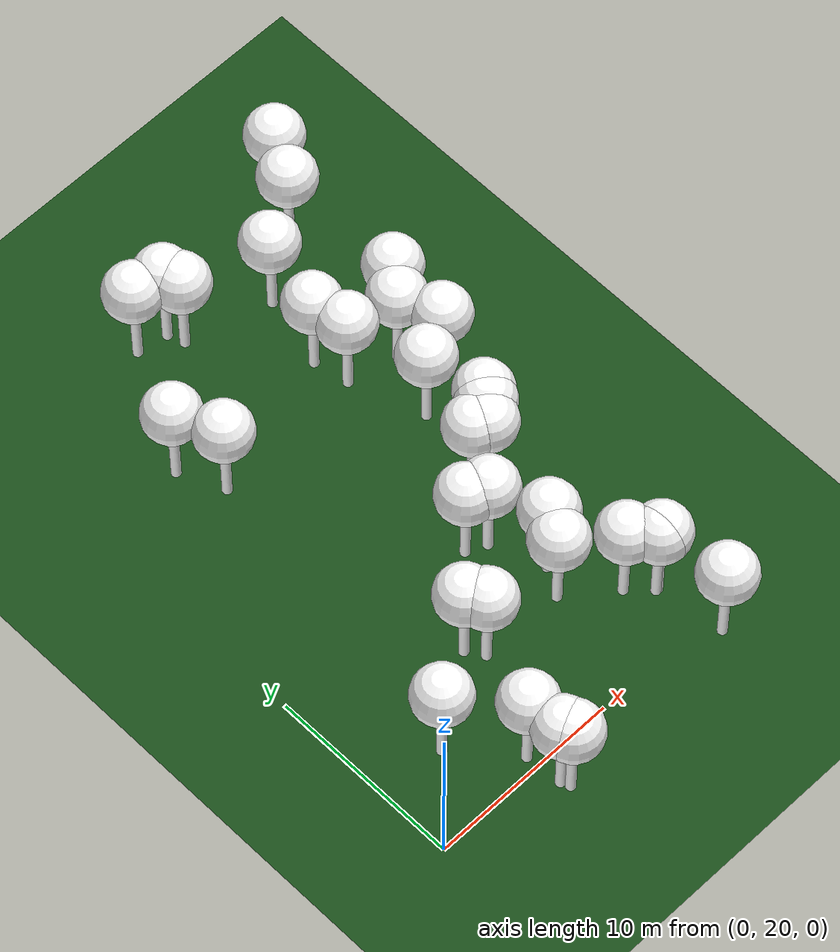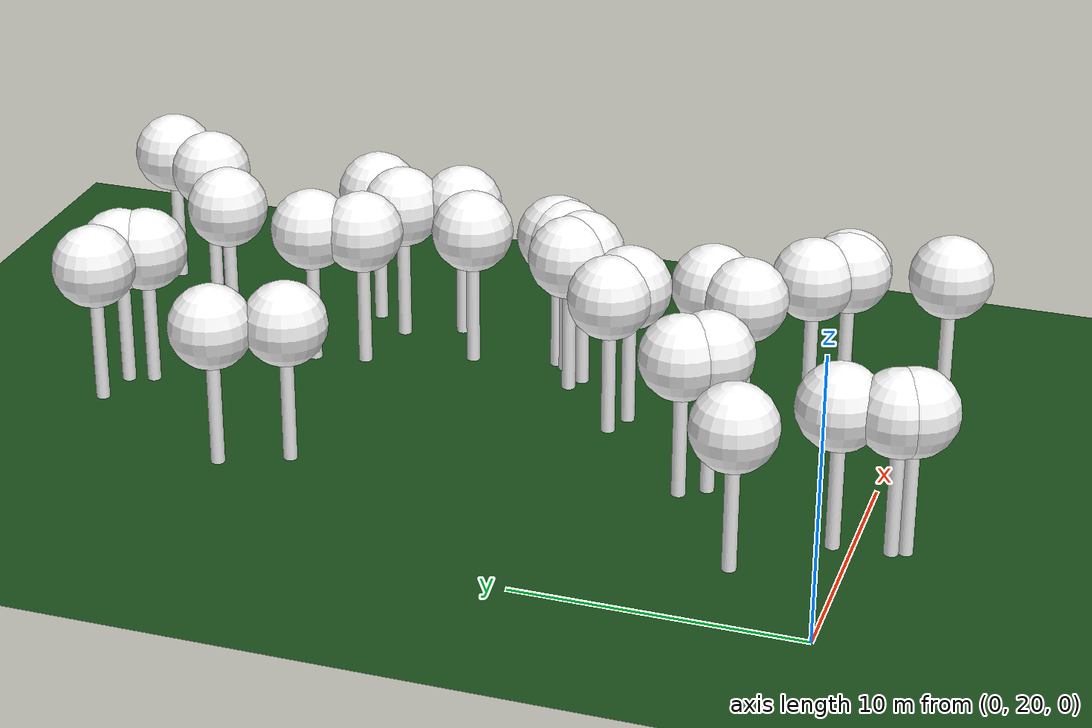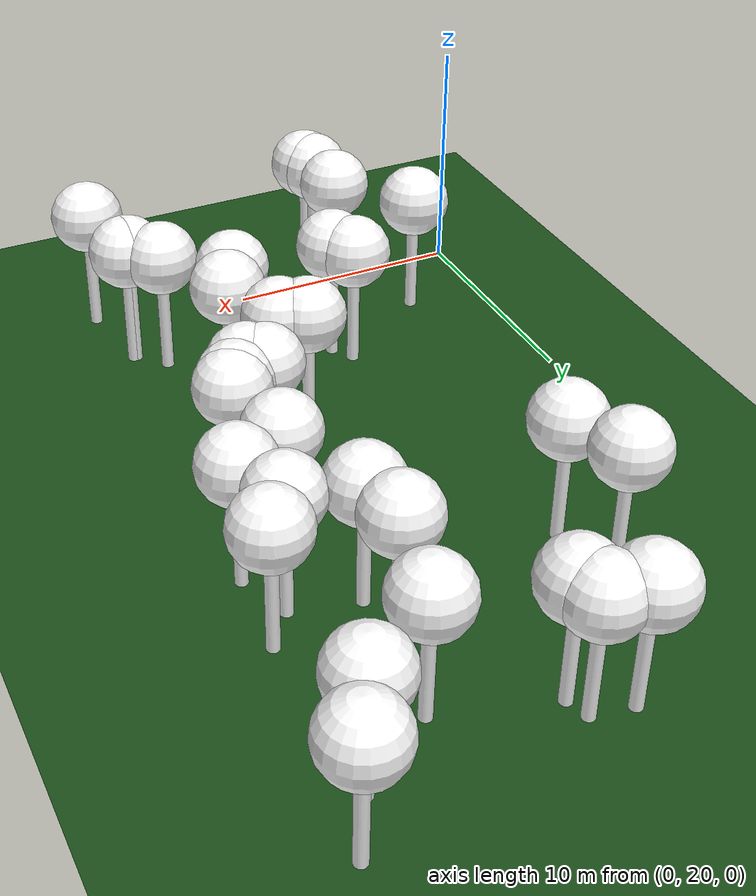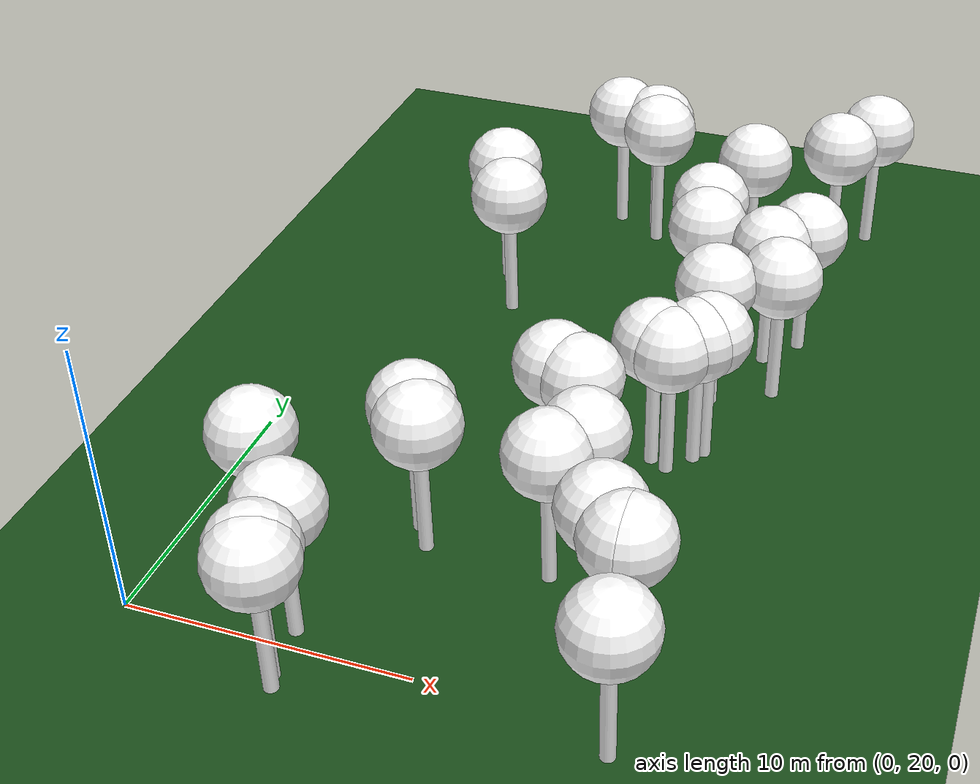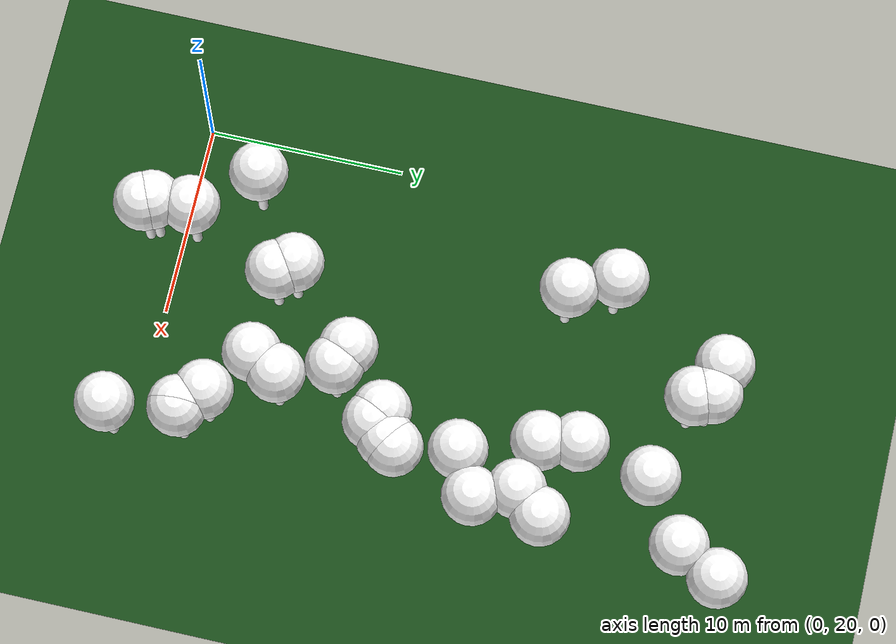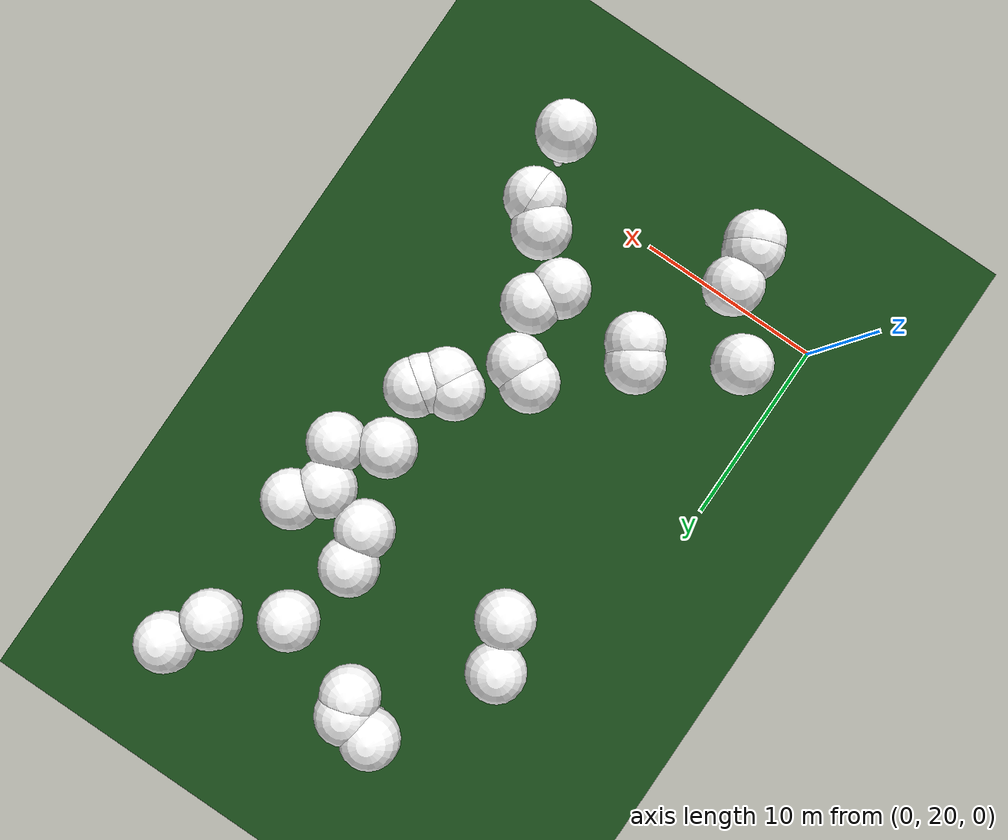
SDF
<sdf version="1.8">
 <world name="forest_world">
  <model name="tree_simple497">
   <static>1</static>
   <link name="link">
    <pose>0 0 0.1 0 -0 0</pose>
    <collision name="collision_trunk">
     <pose>0 0 2 0 -0 0</pose>
     <geometry><cylinder><radius>0.25</radius><length>4</length></cylinder></geometry>
    </collision>
    <collision name="collision_treetop">
     <pose>0 0 5.2 0 -0 0</pose>
     <geometry><sphere><radius>1.5</radius></sphere></geometry>
    </collision>
    <visual name="trunk">
     <pose>0 0 2 0 -0 0</pose>
     <geometry><cylinder><radius>0.25</radius><length>4</length></cylinder></geometry>
     <material>
      <ambient>0.5 0.5 0.5 1</ambient>
      <diffuse>1.0 1.0 1.0 1</diffuse>
      <specular>0.0 0.0 0.0 1</specular>
      <pbr>
       <metal>
        <albedo_map>../worlds/textures/tree_simple_trunk.jpg</albedo_map>
        <metalness>0.0</metalness>
        <roughness>0.8</roughness>
       </metal>
      </pbr>
     </material>
    </visual>
    <visual name="treetop">
     <pose>0 0 5.2 0 -0 0</pose>
     <geometry><sphere><radius>1.5</radius></sphere></geometry>
     <material>
      <ambient>0.5 0.5 0.5 1</ambient>
      <diffuse>1.0 1.0 1.0 1</diffuse>
      <specular>0.0 0.0 0.0 1</specular>
      <pbr>
       <metal>
        <albedo_map>../worlds/textures/tree_simple_treetop.jpg</albedo_map>
        <metalness>0.0</metalness>
        <roughness>0.9</roughness>
       </metal>
      </pbr>
     </material>
    </visual>
   </link>
   <pose>16.5730666381 19.0016793819 0 0 -0 0</pose>
  </model>
  <model name="tree_simple465">
   <static>1</static>
   <link name="link">
    <pose>0 0 0.1 0 -0 0</pose>
    <collision name="collision_trunk">
     <pose>0 0 2 0 -0 0</pose>
     <geometry><cylinder><radius>0.25</radius><length>4</length></cylinder></geometry>
    </collision>
    <collision name="collision_treetop">
     <pose>0 0 5.2 0 -0 0</pose>
     <geometry><sphere><radius>1.5</radius></sphere></geometry>
    </collision>
    <visual name="trunk">
     <pose>0 0 2 0 -0 0</pose>
     <geometry><cylinder><radius>0.25</radius><length>4</length></cylinder></geometry>
     <material>
      <ambient>0.5 0.5 0.5 1</ambient>
      <diffuse>1.0 1.0 1.0 1</diffuse>
      <specular>0.0 0.0 0.0 1</specular>
      <pbr>
       <metal>
        <albedo_map>../worlds/textures/tree_simple_trunk.jpg</albedo_map>
        <metalness>0.0</metalness>
        <roughness>0.8</roughness>
       </metal>
      </pbr>
     </material>
    </visual>
    <visual name="treetop">
     <pose>0 0 5.2 0 -0 0</pose>
     <geometry><sphere><radius>1.5</radius></sphere></geometry>
     <material>
      <ambient>0.5 0.5 0.5 1</ambient>
      <diffuse>1.0 1.0 1.0 1</diffuse>
      <specular>0.0 0.0 0.0 1</specular>
      <pbr>
       <metal>
        <albedo_map>../worlds/textures/tree_simple_treetop.jpg</albedo_map>
        <metalness>0.0</metalness>
        <roughness>0.9</roughness>
       </metal>
      </pbr>
     </material>
    </visual>
   </link>
   <pose>5.78708546562 20.6382949275 0 0 -0 0</pose>
  </model>
  <model name="tree_simple457">
   <static>1</static>
   <link name="link">
    <pose>0 0 0.1 0 -0 0</pose>
    <collision name="collision_trunk">
     <pose>0 0 2 0 -0 0</pose>
     <geometry><cylinder><radius>0.25</radius><length>4</length></cylinder></geometry>
    </collision>
    <collision name="collision_treetop">
     <pose>0 0 5.2 0 -0 0</pose>
     <geometry><sphere><radius>1.5</radius></sphere></geometry>
    </collision>
    <visual name="trunk">
     <pose>0 0 2 0 -0 0</pose>
     <geometry><cylinder><radius>0.25</radius><length>4</length></cylinder></geometry>
     <material>
      <ambient>0.5 0.5 0.5 1</ambient>
      <diffuse>1.0 1.0 1.0 1</diffuse>
      <specular>0.0 0.0 0.0 1</specular>
      <pbr>
       <metal>
        <albedo_map>../worlds/textures/tree_simple_trunk.jpg</albedo_map>
        <metalness>0.0</metalness>
        <roughness>0.8</roughness>
       </metal>
      </pbr>
     </material>
    </visual>
    <visual name="treetop">
     <pose>0 0 5.2 0 -0 0</pose>
     <geometry><sphere><radius>1.5</radius></sphere></geometry>
     <material>
      <ambient>0.5 0.5 0.5 1</ambient>
      <diffuse>1.0 1.0 1.0 1</diffuse>
      <specular>0.0 0.0 0.0 1</specular>
      <pbr>
       <metal>
        <albedo_map>../worlds/textures/tree_simple_treetop.jpg</albedo_map>
        <metalness>0.0</metalness>
        <roughness>0.9</roughness>
       </metal>
      </pbr>
     </material>
    </visual>
   </link>
   <pose>13.2865883098 26.7984826025 0 0 -0 0</pose>
  </model>
  <model name="tree_simple450">
   <static>1</static>
   <link name="link">
    <pose>0 0 0.1 0 -0 0</pose>
    <collision name="collision_trunk">
     <pose>0 0 2 0 -0 0</pose>
     <geometry><cylinder><radius>0.25</radius><length>4</length></cylinder></geometry>
    </collision>
    <collision name="collision_treetop">
     <pose>0 0 5.2 0 -0 0</pose>
     <geometry><sphere><radius>1.5</radius></sphere></geometry>
    </collision>
    <visual name="trunk">
     <pose>0 0 2 0 -0 0</pose>
     <geometry><cylinder><radius>0.25</radius><length>4</length></cylinder></geometry>
     <material>
      <ambient>0.5 0.5 0.5 1</ambient>
      <diffuse>1.0 1.0 1.0 1</diffuse>
      <specular>0.0 0.0 0.0 1</specular>
      <pbr>
       <metal>
        <albedo_map>../worlds/textures/tree_simple_trunk.jpg</albedo_map>
        <metalness>0.0</metalness>
        <roughness>0.8</roughness>
       </metal>
      </pbr>
     </material>
    </visual>
    <visual name="treetop">
     <pose>0 0 5.2 0 -0 0</pose>
     <geometry><sphere><radius>1.5</radius></sphere></geometry>
     <material>
      <ambient>0.5 0.5 0.5 1</ambient>
      <diffuse>1.0 1.0 1.0 1</diffuse>
      <specular>0.0 0.0 0.0 1</specular>
      <pbr>
       <metal>
        <albedo_map>../worlds/textures/tree_simple_treetop.jpg</albedo_map>
        <metalness>0.0</metalness>
        <roughness>0.9</roughness>
       </metal>
      </pbr>
     </material>
    </visual>
   </link>
   <pose>16.0273432372 22.5148519884 0 0 -0 0</pose>
  </model>
  <model name="tree_simple445">
   <static>1</static>
   <link name="link">
    <pose>0 0 0.1 0 -0 0</pose>
    <collision name="collision_trunk">
     <pose>0 0 2 0 -0 0</pose>
     <geometry><cylinder><radius>0.25</radius><length>4</length></cylinder></geometry>
    </collision>
    <collision name="collision_treetop">
     <pose>0 0 5.2 0 -0 0</pose>
     <geometry><sphere><radius>1.5</radius></sphere></geometry>
    </collision>
    <visual name="trunk">
     <pose>0 0 2 0 -0 0</pose>
     <geometry><cylinder><radius>0.25</radius><length>4</length></cylinder></geometry>
     <material>
      <ambient>0.5 0.5 0.5 1</ambient>
      <diffuse>1.0 1.0 1.0 1</diffuse>
      <specular>0.0 0.0 0.0 1</specular>
      <pbr>
       <metal>
        <albedo_map>../worlds/textures/tree_simple_trunk.jpg</albedo_map>
        <metalness>0.0</metalness>
        <roughness>0.8</roughness>
       </metal>
      </pbr>
     </material>
    </visual>
    <visual name="treetop">
     <pose>0 0 5.2 0 -0 0</pose>
     <geometry><sphere><radius>1.5</radius></sphere></geometry>
     <material>
      <ambient>0.5 0.5 0.5 1</ambient>
      <diffuse>1.0 1.0 1.0 1</diffuse>
      <specular>0.0 0.0 0.0 1</specular>
      <pbr>
       <metal>
        <albedo_map>../worlds/textures/tree_simple_treetop.jpg</albedo_map>
        <metalness>0.0</metalness>
        <roughness>0.9</roughness>
       </metal>
      </pbr>
     </material>
    </visual>
   </link>
   <pose>17.3330924595 47.7477611906 0 0 -0 0</pose>
  </model>
  <model name="tree_simple419">
   <static>1</static>
   <link name="link">
    <pose>0 0 0.1 0 -0 0</pose>
    <collision name="collision_trunk">
     <pose>0 0 2 0 -0 0</pose>
     <geometry><cylinder><radius>0.25</radius><length>4</length></cylinder></geometry>
    </collision>
    <collision name="collision_treetop">
     <pose>0 0 5.2 0 -0 0</pose>
     <geometry><sphere><radius>1.5</radius></sphere></geometry>
    </collision>
    <visual name="trunk">
     <pose>0 0 2 0 -0 0</pose>
     <geometry><cylinder><radius>0.25</radius><length>4</length></cylinder></geometry>
     <material>
      <ambient>0.5 0.5 0.5 1</ambient>
      <diffuse>1.0 1.0 1.0 1</diffuse>
      <specular>0.0 0.0 0.0 1</specular>
      <pbr>
       <metal>
        <albedo_map>../worlds/textures/tree_simple_trunk.jpg</albedo_map>
        <metalness>0.0</metalness>
        <roughness>0.8</roughness>
       </metal>
      </pbr>
     </material>
    </visual>
    <visual name="treetop">
     <pose>0 0 5.2 0 -0 0</pose>
     <geometry><sphere><radius>1.5</radius></sphere></geometry>
     <material>
      <ambient>0.5 0.5 0.5 1</ambient>
      <diffuse>1.0 1.0 1.0 1</diffuse>
      <specular>0.0 0.0 0.0 1</specular>
      <pbr>
       <metal>
        <albedo_map>../worlds/textures/tree_simple_treetop.jpg</albedo_map>
        <metalness>0.0</metalness>
        <roughness>0.9</roughness>
       </metal>
      </pbr>
     </material>
    </visual>
   </link>
   <pose>15.0608261067 36.3391301174 0 0 -0 0</pose>
  </model>
  <model name="tree_simple413">
   <static>1</static>
   <link name="link">
    <pose>0 0 0.1 0 -0 0</pose>
    <collision name="collision_trunk">
     <pose>0 0 2 0 -0 0</pose>
     <geometry><cylinder><radius>0.25</radius><length>4</length></cylinder></geometry>
    </collision>
    <collision name="collision_treetop">
     <pose>0 0 5.2 0 -0 0</pose>
     <geometry><sphere><radius>1.5</radius></sphere></geometry>
    </collision>
    <visual name="trunk">
     <pose>0 0 2 0 -0 0</pose>
     <geometry><cylinder><radius>0.25</radius><length>4</length></cylinder></geometry>
     <material>
      <ambient>0.5 0.5 0.5 1</ambient>
      <diffuse>1.0 1.0 1.0 1</diffuse>
      <specular>0.0 0.0 0.0 1</specular>
      <pbr>
       <metal>
        <albedo_map>../worlds/textures/tree_simple_trunk.jpg</albedo_map>
        <metalness>0.0</metalness>
        <roughness>0.8</roughness>
       </metal>
      </pbr>
     </material>
    </visual>
    <visual name="treetop">
     <pose>0 0 5.2 0 -0 0</pose>
     <geometry><sphere><radius>1.5</radius></sphere></geometry>
     <material>
      <ambient>0.5 0.5 0.5 1</ambient>
      <diffuse>1.0 1.0 1.0 1</diffuse>
      <specular>0.0 0.0 0.0 1</specular>
      <pbr>
       <metal>
        <albedo_map>../worlds/textures/tree_simple_treetop.jpg</albedo_map>
        <metalness>0.0</metalness>
        <roughness>0.9</roughness>
       </metal>
      </pbr>
     </material>
    </visual>
   </link>
   <pose>4.79772995732 42.1907919742 0 0 -0 0</pose>
  </model>
  <model name="tree_simple405">
   <static>1</static>
   <link name="link">
    <pose>0 0 0.1 0 -0 0</pose>
    <collision name="collision_trunk">
     <pose>0 0 2 0 -0 0</pose>
     <geometry><cylinder><radius>0.25</radius><length>4</length></cylinder></geometry>
    </collision>
    <collision name="collision_treetop">
     <pose>0 0 5.2 0 -0 0</pose>
     <geometry><sphere><radius>1.5</radius></sphere></geometry>
    </collision>
    <visual name="trunk">
     <pose>0 0 2 0 -0 0</pose>
     <geometry><cylinder><radius>0.25</radius><length>4</length></cylinder></geometry>
     <material>
      <ambient>0.5 0.5 0.5 1</ambient>
      <diffuse>1.0 1.0 1.0 1</diffuse>
      <specular>0.0 0.0 0.0 1</specular>
      <pbr>
       <metal>
        <albedo_map>../worlds/textures/tree_simple_trunk.jpg</albedo_map>
        <metalness>0.0</metalness>
        <roughness>0.8</roughness>
       </metal>
      </pbr>
     </material>
    </visual>
    <visual name="treetop">
     <pose>0 0 5.2 0 -0 0</pose>
     <geometry><sphere><radius>1.5</radius></sphere></geometry>
     <material>
      <ambient>0.5 0.5 0.5 1</ambient>
      <diffuse>1.0 1.0 1.0 1</diffuse>
      <specular>0.0 0.0 0.0 1</specular>
      <pbr>
       <metal>
        <albedo_map>../worlds/textures/tree_simple_treetop.jpg</albedo_map>
        <metalness>0.0</metalness>
        <roughness>0.9</roughness>
       </metal>
      </pbr>
     </material>
    </visual>
   </link>
   <pose>13.9640568795 32.2793272532 0 0 -0 0</pose>
  </model>
  <model name="tree_simple401">
   <static>1</static>
   <link name="link">
    <pose>0 0 0.1 0 -0 0</pose>
    <collision name="collision_trunk">
     <pose>0 0 2 0 -0 0</pose>
     <geometry><cylinder><radius>0.25</radius><length>4</length></cylinder></geometry>
    </collision>
    <collision name="collision_treetop">
     <pose>0 0 5.2 0 -0 0</pose>
     <geometry><sphere><radius>1.5</radius></sphere></geometry>
    </collision>
    <visual name="trunk">
     <pose>0 0 2 0 -0 0</pose>
     <geometry><cylinder><radius>0.25</radius><length>4</length></cylinder></geometry>
     <material>
      <ambient>0.5 0.5 0.5 1</ambient>
      <diffuse>1.0 1.0 1.0 1</diffuse>
      <specular>0.0 0.0 0.0 1</specular>
      <pbr>
       <metal>
        <albedo_map>../worlds/textures/tree_simple_trunk.jpg</albedo_map>
        <metalness>0.0</metalness>
        <roughness>0.8</roughness>
       </metal>
      </pbr>
     </material>
    </visual>
    <visual name="treetop">
     <pose>0 0 5.2 0 -0 0</pose>
     <geometry><sphere><radius>1.5</radius></sphere></geometry>
     <material>
      <ambient>0.5 0.5 0.5 1</ambient>
      <diffuse>1.0 1.0 1.0 1</diffuse>
      <specular>0.0 0.0 0.0 1</specular>
      <pbr>
       <metal>
        <albedo_map>../worlds/textures/tree_simple_treetop.jpg</albedo_map>
        <metalness>0.0</metalness>
        <roughness>0.9</roughness>
       </metal>
      </pbr>
     </material>
    </visual>
   </link>
   <pose>18.5119614972 49.8300347258 0 0 -0 0</pose>
  </model>
  <model name="tree_simple381">
   <static>1</static>
   <link name="link">
    <pose>0 0 0.1 0 -0 0</pose>
    <collision name="collision_trunk">
     <pose>0 0 2 0 -0 0</pose>
     <geometry><cylinder><radius>0.25</radius><length>4</length></cylinder></geometry>
    </collision>
    <collision name="collision_treetop">
     <pose>0 0 5.2 0 -0 0</pose>
     <geometry><sphere><radius>1.5</radius></sphere></geometry>
    </collision>
    <visual name="trunk">
     <pose>0 0 2 0 -0 0</pose>
     <geometry><cylinder><radius>0.25</radius><length>4</length></cylinder></geometry>
     <material>
      <ambient>0.5 0.5 0.5 1</ambient>
      <diffuse>1.0 1.0 1.0 1</diffuse>
      <specular>0.0 0.0 0.0 1</specular>
      <pbr>
       <metal>
        <albedo_map>../worlds/textures/tree_simple_trunk.jpg</albedo_map>
        <metalness>0.0</metalness>
        <roughness>0.8</roughness>
       </metal>
      </pbr>
     </material>
    </visual>
    <visual name="treetop">
     <pose>0 0 5.2 0 -0 0</pose>
     <geometry><sphere><radius>1.5</radius></sphere></geometry>
     <material>
      <ambient>0.5 0.5 0.5 1</ambient>
      <diffuse>1.0 1.0 1.0 1</diffuse>
      <specular>0.0 0.0 0.0 1</specular>
      <pbr>
       <metal>
        <albedo_map>../worlds/textures/tree_simple_treetop.jpg</albedo_map>
        <metalness>0.0</metalness>
        <roughness>0.9</roughness>
       </metal>
      </pbr>
     </material>
    </visual>
   </link>
   <pose>14.598493672 31.9609585056 0 0 -0 0</pose>
  </model>
  <model name="tree_simple367">
   <static>1</static>
   <link name="link">
    <pose>0 0 0.1 0 -0 0</pose>
    <collision name="collision_trunk">
     <pose>0 0 2 0 -0 0</pose>
     <geometry><cylinder><radius>0.25</radius><length>4</length></cylinder></geometry>
    </collision>
    <collision name="collision_treetop">
     <pose>0 0 5.2 0 -0 0</pose>
     <geometry><sphere><radius>1.5</radius></sphere></geometry>
    </collision>
    <visual name="trunk">
     <pose>0 0 2 0 -0 0</pose>
     <geometry><cylinder><radius>0.25</radius><length>4</length></cylinder></geometry>
     <material>
      <ambient>0.5 0.5 0.5 1</ambient>
      <diffuse>1.0 1.0 1.0 1</diffuse>
      <specular>0.0 0.0 0.0 1</specular>
      <pbr>
       <metal>
        <albedo_map>../worlds/textures/tree_simple_trunk.jpg</albedo_map>
        <metalness>0.0</metalness>
        <roughness>0.8</roughness>
       </metal>
      </pbr>
     </material>
    </visual>
    <visual name="treetop">
     <pose>0 0 5.2 0 -0 0</pose>
     <geometry><sphere><radius>1.5</radius></sphere></geometry>
     <material>
      <ambient>0.5 0.5 0.5 1</ambient>
      <diffuse>1.0 1.0 1.0 1</diffuse>
      <specular>0.0 0.0 0.0 1</specular>
      <pbr>
       <metal>
        <albedo_map>../worlds/textures/tree_simple_treetop.jpg</albedo_map>
        <metalness>0.0</metalness>
        <roughness>0.9</roughness>
       </metal>
      </pbr>
     </material>
    </visual>
   </link>
   <pose>14.2659299001 45.7179827091 0 0 -0 0</pose>
  </model>
  <model name="tree_simple365">
   <static>1</static>
   <link name="link">
    <pose>0 0 0.1 0 -0 0</pose>
    <collision name="collision_trunk">
     <pose>0 0 2 0 -0 0</pose>
     <geometry><cylinder><radius>0.25</radius><length>4</length></cylinder></geometry>
    </collision>
    <collision name="collision_treetop">
     <pose>0 0 5.2 0 -0 0</pose>
     <geometry><sphere><radius>1.5</radius></sphere></geometry>
    </collision>
    <visual name="trunk">
     <pose>0 0 2 0 -0 0</pose>
     <geometry><cylinder><radius>0.25</radius><length>4</length></cylinder></geometry>
     <material>
      <ambient>0.5 0.5 0.5 1</ambient>
      <diffuse>1.0 1.0 1.0 1</diffuse>
      <specular>0.0 0.0 0.0 1</specular>
      <pbr>
       <metal>
        <albedo_map>../worlds/textures/tree_simple_trunk.jpg</albedo_map>
        <metalness>0.0</metalness>
        <roughness>0.8</roughness>
       </metal>
      </pbr>
     </material>
    </visual>
    <visual name="treetop">
     <pose>0 0 5.2 0 -0 0</pose>
     <geometry><sphere><radius>1.5</radius></sphere></geometry>
     <material>
      <ambient>0.5 0.5 0.5 1</ambient>
      <diffuse>1.0 1.0 1.0 1</diffuse>
      <specular>0.0 0.0 0.0 1</specular>
      <pbr>
       <metal>
        <albedo_map>../worlds/textures/tree_simple_treetop.jpg</albedo_map>
        <metalness>0.0</metalness>
        <roughness>0.9</roughness>
       </metal>
      </pbr>
     </material>
    </visual>
   </link>
   <pose>7.96669325113 48.1339153876 0 0 -0 0</pose>
  </model>
  <model name="tree_simple340">
   <static>1</static>
   <link name="link">
    <pose>0 0 0.1 0 -0 0</pose>
    <collision name="collision_trunk">
     <pose>0 0 2 0 -0 0</pose>
     <geometry><cylinder><radius>0.25</radius><length>4</length></cylinder></geometry>
    </collision>
    <collision name="collision_treetop">
     <pose>0 0 5.2 0 -0 0</pose>
     <geometry><sphere><radius>1.5</radius></sphere></geometry>
    </collision>
    <visual name="trunk">
     <pose>0 0 2 0 -0 0</pose>
     <geometry><cylinder><radius>0.25</radius><length>4</length></cylinder></geometry>
     <material>
      <ambient>0.5 0.5 0.5 1</ambient>
      <diffuse>1.0 1.0 1.0 1</diffuse>
      <specular>0.0 0.0 0.0 1</specular>
      <pbr>
       <metal>
        <albedo_map>../worlds/textures/tree_simple_trunk.jpg</albedo_map>
        <metalness>0.0</metalness>
        <roughness>0.8</roughness>
       </metal>
      </pbr>
     </material>
    </visual>
    <visual name="treetop">
     <pose>0 0 5.2 0 -0 0</pose>
     <geometry><sphere><radius>1.5</radius></sphere></geometry>
     <material>
      <ambient>0.5 0.5 0.5 1</ambient>
      <diffuse>1.0 1.0 1.0 1</diffuse>
      <specular>0.0 0.0 0.0 1</specular>
      <pbr>
       <metal>
        <albedo_map>../worlds/textures/tree_simple_treetop.jpg</albedo_map>
        <metalness>0.0</metalness>
        <roughness>0.9</roughness>
       </metal>
      </pbr>
     </material>
    </visual>
   </link>
   <pose>15.6359324045 33.2415832038 0 0 -0 0</pose>
  </model>
  <model name="tree_simple339">
   <static>1</static>
   <link name="link">
    <pose>0 0 0.1 0 -0 0</pose>
    <collision name="collision_trunk">
     <pose>0 0 2 0 -0 0</pose>
     <geometry><cylinder><radius>0.25</radius><length>4</length></cylinder></geometry>
    </collision>
    <collision name="collision_treetop">
     <pose>0 0 5.2 0 -0 0</pose>
     <geometry><sphere><radius>1.5</radius></sphere></geometry>
    </collision>
    <visual name="trunk">
     <pose>0 0 2 0 -0 0</pose>
     <geometry><cylinder><radius>0.25</radius><length>4</length></cylinder></geometry>
     <material>
      <ambient>0.5 0.5 0.5 1</ambient>
      <diffuse>1.0 1.0 1.0 1</diffuse>
      <specular>0.0 0.0 0.0 1</specular>
      <pbr>
       <metal>
        <albedo_map>../worlds/textures/tree_simple_trunk.jpg</albedo_map>
        <metalness>0.0</metalness>
        <roughness>0.8</roughness>
       </metal>
      </pbr>
     </material>
    </visual>
    <visual name="treetop">
     <pose>0 0 5.2 0 -0 0</pose>
     <geometry><sphere><radius>1.5</radius></sphere></geometry>
     <material>
      <ambient>0.5 0.5 0.5 1</ambient>
      <diffuse>1.0 1.0 1.0 1</diffuse>
      <specular>0.0 0.0 0.0 1</specular>
      <pbr>
       <metal>
        <albedo_map>../worlds/textures/tree_simple_treetop.jpg</albedo_map>
        <metalness>0.0</metalness>
        <roughness>0.9</roughness>
       </metal>
      </pbr>
     </material>
    </visual>
   </link>
   <pose>8.14193712957 25.5166560065 0 0 -0 0</pose>
  </model>
  <model name="tree_simple328">
   <static>1</static>
   <link name="link">
    <pose>0 0 0.1 0 -0 0</pose>
    <collision name="collision_trunk">
     <pose>0 0 2 0 -0 0</pose>
     <geometry><cylinder><radius>0.25</radius><length>4</length></cylinder></geometry>
    </collision>
    <collision name="collision_treetop">
     <pose>0 0 5.2 0 -0 0</pose>
     <geometry><sphere><radius>1.5</radius></sphere></geometry>
    </collision>
    <visual name="trunk">
     <pose>0 0 2 0 -0 0</pose>
     <geometry><cylinder><radius>0.25</radius><length>4</length></cylinder></geometry>
     <material>
      <ambient>0.5 0.5 0.5 1</ambient>
      <diffuse>1.0 1.0 1.0 1</diffuse>
      <specular>0.0 0.0 0.0 1</specular>
      <pbr>
       <metal>
        <albedo_map>../worlds/textures/tree_simple_trunk.jpg</albedo_map>
        <metalness>0.0</metalness>
        <roughness>0.8</roughness>
       </metal>
      </pbr>
     </material>
    </visual>
    <visual name="treetop">
     <pose>0 0 5.2 0 -0 0</pose>
     <geometry><sphere><radius>1.5</radius></sphere></geometry>
     <material>
      <ambient>0.5 0.5 0.5 1</ambient>
      <diffuse>1.0 1.0 1.0 1</diffuse>
      <specular>0.0 0.0 0.0 1</specular>
      <pbr>
       <metal>
        <albedo_map>../worlds/textures/tree_simple_treetop.jpg</albedo_map>
        <metalness>0.0</metalness>
        <roughness>0.9</roughness>
       </metal>
      </pbr>
     </material>
    </visual>
   </link>
   <pose>3.34573808519 23.5188113382 0 0 -0 0</pose>
  </model>
  <model name="tree_simple325">
   <static>1</static>
   <link name="link">
    <pose>0 0 0.1 0 -0 0</pose>
    <collision name="collision_trunk">
     <pose>0 0 2 0 -0 0</pose>
     <geometry><cylinder><radius>0.25</radius><length>4</length></cylinder></geometry>
    </collision>
    <collision name="collision_treetop">
     <pose>0 0 5.2 0 -0 0</pose>
     <geometry><sphere><radius>1.5</radius></sphere></geometry>
    </collision>
    <visual name="trunk">
     <pose>0 0 2 0 -0 0</pose>
     <geometry><cylinder><radius>0.25</radius><length>4</length></cylinder></geometry>
     <material>
      <ambient>0.5 0.5 0.5 1</ambient>
      <diffuse>1.0 1.0 1.0 1</diffuse>
      <specular>0.0 0.0 0.0 1</specular>
      <pbr>
       <metal>
        <albedo_map>../worlds/textures/tree_simple_trunk.jpg</albedo_map>
        <metalness>0.0</metalness>
        <roughness>0.8</roughness>
       </metal>
      </pbr>
     </material>
    </visual>
    <visual name="treetop">
     <pose>0 0 5.2 0 -0 0</pose>
     <geometry><sphere><radius>1.5</radius></sphere></geometry>
     <material>
      <ambient>0.5 0.5 0.5 1</ambient>
      <diffuse>1.0 1.0 1.0 1</diffuse>
      <specular>0.0 0.0 0.0 1</specular>
      <pbr>
       <metal>
        <albedo_map>../worlds/textures/tree_simple_treetop.jpg</albedo_map>
        <metalness>0.0</metalness>
        <roughness>0.9</roughness>
       </metal>
      </pbr>
     </material>
    </visual>
   </link>
   <pose>16.3512762839 39.5353955834 0 0 -0 0</pose>
  </model>
  <model name="tree_simple320">
   <static>1</static>
   <link name="link">
    <pose>0 0 0.1 0 -0 0</pose>
    <collision name="collision_trunk">
     <pose>0 0 2 0 -0 0</pose>
     <geometry><cylinder><radius>0.25</radius><length>4</length></cylinder></geometry>
    </collision>
    <collision name="collision_treetop">
     <pose>0 0 5.2 0 -0 0</pose>
     <geometry><sphere><radius>1.5</radius></sphere></geometry>
    </collision>
    <visual name="trunk">
     <pose>0 0 2 0 -0 0</pose>
     <geometry><cylinder><radius>0.25</radius><length>4</length></cylinder></geometry>
     <material>
      <ambient>0.5 0.5 0.5 1</ambient>
      <diffuse>1.0 1.0 1.0 1</diffuse>
      <specular>0.0 0.0 0.0 1</specular>
      <pbr>
       <metal>
        <albedo_map>../worlds/textures/tree_simple_trunk.jpg</albedo_map>
        <metalness>0.0</metalness>
        <roughness>0.8</roughness>
       </metal>
      </pbr>
     </material>
    </visual>
    <visual name="treetop">
     <pose>0 0 5.2 0 -0 0</pose>
     <geometry><sphere><radius>1.5</radius></sphere></geometry>
     <material>
      <ambient>0.5 0.5 0.5 1</ambient>
      <diffuse>1.0 1.0 1.0 1</diffuse>
      <specular>0.0 0.0 0.0 1</specular>
      <pbr>
       <metal>
        <albedo_map>../worlds/textures/tree_simple_treetop.jpg</albedo_map>
        <metalness>0.0</metalness>
        <roughness>0.9</roughness>
       </metal>
      </pbr>
     </material>
    </visual>
   </link>
   <pose>17.4267796311 40.9028236297 0 0 -0 0</pose>
  </model>
  <model name="tree_simple287">
   <static>1</static>
   <link name="link">
    <pose>0 0 0.1 0 -0 0</pose>
    <collision name="collision_trunk">
     <pose>0 0 2 0 -0 0</pose>
     <geometry><cylinder><radius>0.25</radius><length>4</length></cylinder></geometry>
    </collision>
    <collision name="collision_treetop">
     <pose>0 0 5.2 0 -0 0</pose>
     <geometry><sphere><radius>1.5</radius></sphere></geometry>
    </collision>
    <visual name="trunk">
     <pose>0 0 2 0 -0 0</pose>
     <geometry><cylinder><radius>0.25</radius><length>4</length></cylinder></geometry>
     <material>
      <ambient>0.5 0.5 0.5 1</ambient>
      <diffuse>1.0 1.0 1.0 1</diffuse>
      <specular>0.0 0.0 0.0 1</specular>
      <pbr>
       <metal>
        <albedo_map>../worlds/textures/tree_simple_trunk.jpg</albedo_map>
        <metalness>0.0</metalness>
        <roughness>0.8</roughness>
       </metal>
      </pbr>
     </material>
    </visual>
    <visual name="treetop">
     <pose>0 0 5.2 0 -0 0</pose>
     <geometry><sphere><radius>1.5</radius></sphere></geometry>
     <material>
      <ambient>0.5 0.5 0.5 1</ambient>
      <diffuse>1.0 1.0 1.0 1</diffuse>
      <specular>0.0 0.0 0.0 1</specular>
      <pbr>
       <metal>
        <albedo_map>../worlds/textures/tree_simple_treetop.jpg</albedo_map>
        <metalness>0.0</metalness>
        <roughness>0.9</roughness>
       </metal>
      </pbr>
     </material>
    </visual>
   </link>
   <pose>5.81960290033 39.8953620518 0 0 -0 0</pose>
  </model>
  <model name="tree_simple275">
   <static>1</static>
   <link name="link">
    <pose>0 0 0.1 0 -0 0</pose>
    <collision name="collision_trunk">
     <pose>0 0 2 0 -0 0</pose>
     <geometry><cylinder><radius>0.25</radius><length>4</length></cylinder></geometry>
    </collision>
    <collision name="collision_treetop">
     <pose>0 0 5.2 0 -0 0</pose>
     <geometry><sphere><radius>1.5</radius></sphere></geometry>
    </collision>
    <visual name="trunk">
     <pose>0 0 2 0 -0 0</pose>
     <geometry><cylinder><radius>0.25</radius><length>4</length></cylinder></geometry>
     <material>
      <ambient>0.5 0.5 0.5 1</ambient>
      <diffuse>1.0 1.0 1.0 1</diffuse>
      <specular>0.0 0.0 0.0 1</specular>
      <pbr>
       <metal>
        <albedo_map>../worlds/textures/tree_simple_trunk.jpg</albedo_map>
        <metalness>0.0</metalness>
        <roughness>0.8</roughness>
       </metal>
      </pbr>
     </material>
    </visual>
    <visual name="treetop">
     <pose>0 0 5.2 0 -0 0</pose>
     <geometry><sphere><radius>1.5</radius></sphere></geometry>
     <material>
      <ambient>0.5 0.5 0.5 1</ambient>
      <diffuse>1.0 1.0 1.0 1</diffuse>
      <specular>0.0 0.0 0.0 1</specular>
      <pbr>
       <metal>
        <albedo_map>../worlds/textures/tree_simple_treetop.jpg</albedo_map>
        <metalness>0.0</metalness>
        <roughness>0.9</roughness>
       </metal>
      </pbr>
     </material>
    </visual>
   </link>
   <pose>11.2194181464 29.9629539421 0 0 -0 0</pose>
  </model>
  <model name="tree_simple254">
   <static>1</static>
   <link name="link">
    <pose>0 0 0.1 0 -0 0</pose>
    <collision name="collision_trunk">
     <pose>0 0 2 0 -0 0</pose>
     <geometry><cylinder><radius>0.25</radius><length>4</length></cylinder></geometry>
    </collision>
    <collision name="collision_treetop">
     <pose>0 0 5.2 0 -0 0</pose>
     <geometry><sphere><radius>1.5</radius></sphere></geometry>
    </collision>
    <visual name="trunk">
     <pose>0 0 2 0 -0 0</pose>
     <geometry><cylinder><radius>0.25</radius><length>4</length></cylinder></geometry>
     <material>
      <ambient>0.5 0.5 0.5 1</ambient>
      <diffuse>1.0 1.0 1.0 1</diffuse>
      <specular>0.0 0.0 0.0 1</specular>
      <pbr>
       <metal>
        <albedo_map>../worlds/textures/tree_simple_trunk.jpg</albedo_map>
        <metalness>0.0</metalness>
        <roughness>0.8</roughness>
       </metal>
      </pbr>
     </material>
    </visual>
    <visual name="treetop">
     <pose>0 0 5.2 0 -0 0</pose>
     <geometry><sphere><radius>1.5</radius></sphere></geometry>
     <material>
      <ambient>0.5 0.5 0.5 1</ambient>
      <diffuse>1.0 1.0 1.0 1</diffuse>
      <specular>0.0 0.0 0.0 1</specular>
      <pbr>
       <metal>
        <albedo_map>../worlds/textures/tree_simple_treetop.jpg</albedo_map>
        <metalness>0.0</metalness>
        <roughness>0.9</roughness>
       </metal>
      </pbr>
     </material>
    </visual>
   </link>
   <pose>13.3684370787 41.9999258399 0 0 -0 0</pose>
  </model>
  <model name="tree_simple229">
   <static>1</static>
   <link name="link">
    <pose>0 0 0.1 0 -0 0</pose>
    <collision name="collision_trunk">
     <pose>0 0 2 0 -0 0</pose>
     <geometry><cylinder><radius>0.25</radius><length>4</length></cylinder></geometry>
    </collision>
    <collision name="collision_treetop">
     <pose>0 0 5.2 0 -0 0</pose>
     <geometry><sphere><radius>1.5</radius></sphere></geometry>
    </collision>
    <visual name="trunk">
     <pose>0 0 2 0 -0 0</pose>
     <geometry><cylinder><radius>0.25</radius><length>4</length></cylinder></geometry>
     <material>
      <ambient>0.5 0.5 0.5 1</ambient>
      <diffuse>1.0 1.0 1.0 1</diffuse>
      <specular>0.0 0.0 0.0 1</specular>
      <pbr>
       <metal>
        <albedo_map>../worlds/textures/tree_simple_trunk.jpg</albedo_map>
        <metalness>0.0</metalness>
        <roughness>0.8</roughness>
       </metal>
      </pbr>
     </material>
    </visual>
    <visual name="treetop">
     <pose>0 0 5.2 0 -0 0</pose>
     <geometry><sphere><radius>1.5</radius></sphere></geometry>
     <material>
      <ambient>0.5 0.5 0.5 1</ambient>
      <diffuse>1.0 1.0 1.0 1</diffuse>
      <specular>0.0 0.0 0.0 1</specular>
      <pbr>
       <metal>
        <albedo_map>../worlds/textures/tree_simple_treetop.jpg</albedo_map>
        <metalness>0.0</metalness>
        <roughness>0.9</roughness>
       </metal>
      </pbr>
     </material>
    </visual>
   </link>
   <pose>17.1703693381 37.4765229217 0 0 -0 0</pose>
  </model>
  <model name="tree_simple196">
   <static>1</static>
   <link name="link">
    <pose>0 0 0.1 0 -0 0</pose>
    <collision name="collision_trunk">
     <pose>0 0 2 0 -0 0</pose>
     <geometry><cylinder><radius>0.25</radius><length>4</length></cylinder></geometry>
    </collision>
    <collision name="collision_treetop">
     <pose>0 0 5.2 0 -0 0</pose>
     <geometry><sphere><radius>1.5</radius></sphere></geometry>
    </collision>
    <visual name="trunk">
     <pose>0 0 2 0 -0 0</pose>
     <geometry><cylinder><radius>0.25</radius><length>4</length></cylinder></geometry>
     <material>
      <ambient>0.5 0.5 0.5 1</ambient>
      <diffuse>1.0 1.0 1.0 1</diffuse>
      <specular>0.0 0.0 0.0 1</specular>
      <pbr>
       <metal>
        <albedo_map>../worlds/textures/tree_simple_trunk.jpg</albedo_map>
        <metalness>0.0</metalness>
        <roughness>0.8</roughness>
       </metal>
      </pbr>
     </material>
    </visual>
    <visual name="treetop">
     <pose>0 0 5.2 0 -0 0</pose>
     <geometry><sphere><radius>1.5</radius></sphere></geometry>
     <material>
      <ambient>0.5 0.5 0.5 1</ambient>
      <diffuse>1.0 1.0 1.0 1</diffuse>
      <specular>0.0 0.0 0.0 1</specular>
      <pbr>
       <metal>
        <albedo_map>../worlds/textures/tree_simple_treetop.jpg</albedo_map>
        <metalness>0.0</metalness>
        <roughness>0.9</roughness>
       </metal>
      </pbr>
     </material>
    </visual>
   </link>
   <pose>13.7422198568 40.1413468751 0 0 -0 0</pose>
  </model>
  <model name="tree_simple189">
   <static>1</static>
   <link name="link">
    <pose>0 0 0.1 0 -0 0</pose>
    <collision name="collision_trunk">
     <pose>0 0 2 0 -0 0</pose>
     <geometry><cylinder><radius>0.25</radius><length>4</length></cylinder></geometry>
    </collision>
    <collision name="collision_treetop">
     <pose>0 0 5.2 0 -0 0</pose>
     <geometry><sphere><radius>1.5</radius></sphere></geometry>
    </collision>
    <visual name="trunk">
     <pose>0 0 2 0 -0 0</pose>
     <geometry><cylinder><radius>0.25</radius><length>4</length></cylinder></geometry>
     <material>
      <ambient>0.5 0.5 0.5 1</ambient>
      <diffuse>1.0 1.0 1.0 1</diffuse>
      <specular>0.0 0.0 0.0 1</specular>
      <pbr>
       <metal>
        <albedo_map>../worlds/textures/tree_simple_trunk.jpg</albedo_map>
        <metalness>0.0</metalness>
        <roughness>0.8</roughness>
       </metal>
      </pbr>
     </material>
    </visual>
    <visual name="treetop">
     <pose>0 0 5.2 0 -0 0</pose>
     <geometry><sphere><radius>1.5</radius></sphere></geometry>
     <material>
      <ambient>0.5 0.5 0.5 1</ambient>
      <diffuse>1.0 1.0 1.0 1</diffuse>
      <specular>0.0 0.0 0.0 1</specular>
      <pbr>
       <metal>
        <albedo_map>../worlds/textures/tree_simple_treetop.jpg</albedo_map>
        <metalness>0.0</metalness>
        <roughness>0.9</roughness>
       </metal>
      </pbr>
     </material>
    </visual>
   </link>
   <pose>7.56705231804 26.3742867244 0 0 -0 0</pose>
  </model>
  <model name="tree_simple181">
   <static>1</static>
   <link name="link">
    <pose>0 0 0.1 0 -0 0</pose>
    <collision name="collision_trunk">
     <pose>0 0 2 0 -0 0</pose>
     <geometry><cylinder><radius>0.25</radius><length>4</length></cylinder></geometry>
    </collision>
    <collision name="collision_treetop">
     <pose>0 0 5.2 0 -0 0</pose>
     <geometry><sphere><radius>1.5</radius></sphere></geometry>
    </collision>
    <visual name="trunk">
     <pose>0 0 2 0 -0 0</pose>
     <geometry><cylinder><radius>0.25</radius><length>4</length></cylinder></geometry>
     <material>
      <ambient>0.5 0.5 0.5 1</ambient>
      <diffuse>1.0 1.0 1.0 1</diffuse>
      <specular>0.0 0.0 0.0 1</specular>
      <pbr>
       <metal>
        <albedo_map>../worlds/textures/tree_simple_trunk.jpg</albedo_map>
        <metalness>0.0</metalness>
        <roughness>0.8</roughness>
       </metal>
      </pbr>
     </material>
    </visual>
    <visual name="treetop">
     <pose>0 0 5.2 0 -0 0</pose>
     <geometry><sphere><radius>1.5</radius></sphere></geometry>
     <material>
      <ambient>0.5 0.5 0.5 1</ambient>
      <diffuse>1.0 1.0 1.0 1</diffuse>
      <specular>0.0 0.0 0.0 1</specular>
      <pbr>
       <metal>
        <albedo_map>../worlds/textures/tree_simple_treetop.jpg</albedo_map>
        <metalness>0.0</metalness>
        <roughness>0.9</roughness>
       </metal>
      </pbr>
     </material>
    </visual>
   </link>
   <pose>14.8848643659 23.5674852772 0 0 -0 0</pose>
  </model>
  <model name="tree_simple177">
   <static>1</static>
   <link name="link">
    <pose>0 0 0.1 0 -0 0</pose>
    <collision name="collision_trunk">
     <pose>0 0 2 0 -0 0</pose>
     <geometry><cylinder><radius>0.25</radius><length>4</length></cylinder></geometry>
    </collision>
    <collision name="collision_treetop">
     <pose>0 0 5.2 0 -0 0</pose>
     <geometry><sphere><radius>1.5</radius></sphere></geometry>
    </collision>
    <visual name="trunk">
     <pose>0 0 2 0 -0 0</pose>
     <geometry><cylinder><radius>0.25</radius><length>4</length></cylinder></geometry>
     <material>
      <ambient>0.5 0.5 0.5 1</ambient>
      <diffuse>1.0 1.0 1.0 1</diffuse>
      <specular>0.0 0.0 0.0 1</specular>
      <pbr>
       <metal>
        <albedo_map>../worlds/textures/tree_simple_trunk.jpg</albedo_map>
        <metalness>0.0</metalness>
        <roughness>0.8</roughness>
       </metal>
      </pbr>
     </material>
    </visual>
    <visual name="treetop">
     <pose>0 0 5.2 0 -0 0</pose>
     <geometry><sphere><radius>1.5</radius></sphere></geometry>
     <material>
      <ambient>0.5 0.5 0.5 1</ambient>
      <diffuse>1.0 1.0 1.0 1</diffuse>
      <specular>0.0 0.0 0.0 1</specular>
      <pbr>
       <metal>
        <albedo_map>../worlds/textures/tree_simple_treetop.jpg</albedo_map>
        <metalness>0.0</metalness>
        <roughness>0.9</roughness>
       </metal>
      </pbr>
     </material>
    </visual>
   </link>
   <pose>5.95472873547 18.7195439191 0 0 -0 0</pose>
  </model>
  <model name="tree_simple170">
   <static>1</static>
   <link name="link">
    <pose>0 0 0.1 0 -0 0</pose>
    <collision name="collision_trunk">
     <pose>0 0 2 0 -0 0</pose>
     <geometry><cylinder><radius>0.25</radius><length>4</length></cylinder></geometry>
    </collision>
    <collision name="collision_treetop">
     <pose>0 0 5.2 0 -0 0</pose>
     <geometry><sphere><radius>1.5</radius></sphere></geometry>
    </collision>
    <visual name="trunk">
     <pose>0 0 2 0 -0 0</pose>
     <geometry><cylinder><radius>0.25</radius><length>4</length></cylinder></geometry>
     <material>
      <ambient>0.5 0.5 0.5 1</ambient>
      <diffuse>1.0 1.0 1.0 1</diffuse>
      <specular>0.0 0.0 0.0 1</specular>
      <pbr>
       <metal>
        <albedo_map>../worlds/textures/tree_simple_trunk.jpg</albedo_map>
        <metalness>0.0</metalness>
        <roughness>0.8</roughness>
       </metal>
      </pbr>
     </material>
    </visual>
    <visual name="treetop">
     <pose>0 0 5.2 0 -0 0</pose>
     <geometry><sphere><radius>1.5</radius></sphere></geometry>
     <material>
      <ambient>0.5 0.5 0.5 1</ambient>
      <diffuse>1.0 1.0 1.0 1</diffuse>
      <specular>0.0 0.0 0.0 1</specular>
      <pbr>
       <metal>
        <albedo_map>../worlds/textures/tree_simple_treetop.jpg</albedo_map>
        <metalness>0.0</metalness>
        <roughness>0.9</roughness>
       </metal>
      </pbr>
     </material>
    </visual>
   </link>
   <pose>15.3427930971 32.8273761874 0 0 -0 0</pose>
  </model>
  <model name="tree_simple148">
   <static>1</static>
   <link name="link">
    <pose>0 0 0.1 0 -0 0</pose>
    <collision name="collision_trunk">
     <pose>0 0 2 0 -0 0</pose>
     <geometry><cylinder><radius>0.25</radius><length>4</length></cylinder></geometry>
    </collision>
    <collision name="collision_treetop">
     <pose>0 0 5.2 0 -0 0</pose>
     <geometry><sphere><radius>1.5</radius></sphere></geometry>
    </collision>
    <visual name="trunk">
     <pose>0 0 2 0 -0 0</pose>
     <geometry><cylinder><radius>0.25</radius><length>4</length></cylinder></geometry>
     <material>
      <ambient>0.5 0.5 0.5 1</ambient>
      <diffuse>1.0 1.0 1.0 1</diffuse>
      <specular>0.0 0.0 0.0 1</specular>
      <pbr>
       <metal>
        <albedo_map>../worlds/textures/tree_simple_trunk.jpg</albedo_map>
        <metalness>0.0</metalness>
        <roughness>0.8</roughness>
       </metal>
      </pbr>
     </material>
    </visual>
    <visual name="treetop">
     <pose>0 0 5.2 0 -0 0</pose>
     <geometry><sphere><radius>1.5</radius></sphere></geometry>
     <material>
      <ambient>0.5 0.5 0.5 1</ambient>
      <diffuse>1.0 1.0 1.0 1</diffuse>
      <specular>0.0 0.0 0.0 1</specular>
      <pbr>
       <metal>
        <albedo_map>../worlds/textures/tree_simple_treetop.jpg</albedo_map>
        <metalness>0.0</metalness>
        <roughness>0.9</roughness>
       </metal>
      </pbr>
     </material>
    </visual>
   </link>
   <pose>9.57342478742 47.8556833804 0 0 -0 0</pose>
  </model>
  <model name="tree_simple141">
   <static>1</static>
   <link name="link">
    <pose>0 0 0.1 0 -0 0</pose>
    <collision name="collision_trunk">
     <pose>0 0 2 0 -0 0</pose>
     <geometry><cylinder><radius>0.25</radius><length>4</length></cylinder></geometry>
    </collision>
    <collision name="collision_treetop">
     <pose>0 0 5.2 0 -0 0</pose>
     <geometry><sphere><radius>1.5</radius></sphere></geometry>
    </collision>
    <visual name="trunk">
     <pose>0 0 2 0 -0 0</pose>
     <geometry><cylinder><radius>0.25</radius><length>4</length></cylinder></geometry>
     <material>
      <ambient>0.5 0.5 0.5 1</ambient>
      <diffuse>1.0 1.0 1.0 1</diffuse>
      <specular>0.0 0.0 0.0 1</specular>
      <pbr>
       <metal>
        <albedo_map>../worlds/textures/tree_simple_trunk.jpg</albedo_map>
        <metalness>0.0</metalness>
        <roughness>0.8</roughness>
       </metal>
      </pbr>
     </material>
    </visual>
    <visual name="treetop">
     <pose>0 0 5.2 0 -0 0</pose>
     <geometry><sphere><radius>1.5</radius></sphere></geometry>
     <material>
      <ambient>0.5 0.5 0.5 1</ambient>
      <diffuse>1.0 1.0 1.0 1</diffuse>
      <specular>0.0 0.0 0.0 1</specular>
      <pbr>
       <metal>
        <albedo_map>../worlds/textures/tree_simple_treetop.jpg</albedo_map>
        <metalness>0.0</metalness>
        <roughness>0.9</roughness>
       </metal>
      </pbr>
     </material>
    </visual>
   </link>
   <pose>9.87468341031 46.9856847557 0 0 -0 0</pose>
  </model>
  <model name="tree_simple94">
   <static>1</static>
   <link name="link">
    <pose>0 0 0.1 0 -0 0</pose>
    <collision name="collision_trunk">
     <pose>0 0 2 0 -0 0</pose>
     <geometry><cylinder><radius>0.25</radius><length>4</length></cylinder></geometry>
    </collision>
    <collision name="collision_treetop">
     <pose>0 0 5.2 0 -0 0</pose>
     <geometry><sphere><radius>1.5</radius></sphere></geometry>
    </collision>
    <visual name="trunk">
     <pose>0 0 2 0 -0 0</pose>
     <geometry><cylinder><radius>0.25</radius><length>4</length></cylinder></geometry>
     <material>
      <ambient>0.5 0.5 0.5 1</ambient>
      <diffuse>1.0 1.0 1.0 1</diffuse>
      <specular>0.0 0.0 0.0 1</specular>
      <pbr>
       <metal>
        <albedo_map>../worlds/textures/tree_simple_trunk.jpg</albedo_map>
        <metalness>0.0</metalness>
        <roughness>0.8</roughness>
       </metal>
      </pbr>
     </material>
    </visual>
    <visual name="treetop">
     <pose>0 0 5.2 0 -0 0</pose>
     <geometry><sphere><radius>1.5</radius></sphere></geometry>
     <material>
      <ambient>0.5 0.5 0.5 1</ambient>
      <diffuse>1.0 1.0 1.0 1</diffuse>
      <specular>0.0 0.0 0.0 1</specular>
      <pbr>
       <metal>
        <albedo_map>../worlds/textures/tree_simple_treetop.jpg</albedo_map>
        <metalness>0.0</metalness>
        <roughness>0.9</roughness>
       </metal>
      </pbr>
     </material>
    </visual>
   </link>
   <pose>6.14879298853 18.2743585392 0 0 -0 0</pose>
  </model>
  <model name="tree_simple93">
   <static>1</static>
   <link name="link">
    <pose>0 0 0.1 0 -0 0</pose>
    <collision name="collision_trunk">
     <pose>0 0 2 0 -0 0</pose>
     <geometry><cylinder><radius>0.25</radius><length>4</length></cylinder></geometry>
    </collision>
    <collision name="collision_treetop">
     <pose>0 0 5.2 0 -0 0</pose>
     <geometry><sphere><radius>1.5</radius></sphere></geometry>
    </collision>
    <visual name="trunk">
     <pose>0 0 2 0 -0 0</pose>
     <geometry><cylinder><radius>0.25</radius><length>4</length></cylinder></geometry>
     <material>
      <ambient>0.5 0.5 0.5 1</ambient>
      <diffuse>1.0 1.0 1.0 1</diffuse>
      <specular>0.0 0.0 0.0 1</specular>
      <pbr>
       <metal>
        <albedo_map>../worlds/textures/tree_simple_trunk.jpg</albedo_map>
        <metalness>0.0</metalness>
        <roughness>0.8</roughness>
       </metal>
      </pbr>
     </material>
    </visual>
    <visual name="treetop">
     <pose>0 0 5.2 0 -0 0</pose>
     <geometry><sphere><radius>1.5</radius></sphere></geometry>
     <material>
      <ambient>0.5 0.5 0.5 1</ambient>
      <diffuse>1.0 1.0 1.0 1</diffuse>
      <specular>0.0 0.0 0.0 1</specular>
      <pbr>
       <metal>
        <albedo_map>../worlds/textures/tree_simple_treetop.jpg</albedo_map>
        <metalness>0.0</metalness>
        <roughness>0.9</roughness>
       </metal>
      </pbr>
     </material>
    </visual>
   </link>
   <pose>12.2251876967 29.518935973 0 0 -0 0</pose>
  </model>
  <model name="tree_simple49">
   <static>1</static>
   <link name="link">
    <pose>0 0 0.1 0 -0 0</pose>
    <collision name="collision_trunk">
     <pose>0 0 2 0 -0 0</pose>
     <geometry><cylinder><radius>0.25</radius><length>4</length></cylinder></geometry>
    </collision>
    <collision name="collision_treetop">
     <pose>0 0 5.2 0 -0 0</pose>
     <geometry><sphere><radius>1.5</radius></sphere></geometry>
    </collision>
    <visual name="trunk">
     <pose>0 0 2 0 -0 0</pose>
     <geometry><cylinder><radius>0.25</radius><length>4</length></cylinder></geometry>
     <material>
      <ambient>0.5 0.5 0.5 1</ambient>
      <diffuse>1.0 1.0 1.0 1</diffuse>
      <specular>0.0 0.0 0.0 1</specular>
      <pbr>
       <metal>
        <albedo_map>../worlds/textures/tree_simple_trunk.jpg</albedo_map>
        <metalness>0.0</metalness>
        <roughness>0.8</roughness>
       </metal>
      </pbr>
     </material>
    </visual>
    <visual name="treetop">
     <pose>0 0 5.2 0 -0 0</pose>
     <geometry><sphere><radius>1.5</radius></sphere></geometry>
     <material>
      <ambient>0.5 0.5 0.5 1</ambient>
      <diffuse>1.0 1.0 1.0 1</diffuse>
      <specular>0.0 0.0 0.0 1</specular>
      <pbr>
       <metal>
        <albedo_map>../worlds/textures/tree_simple_treetop.jpg</albedo_map>
        <metalness>0.0</metalness>
        <roughness>0.9</roughness>
       </metal>
      </pbr>
     </material>
    </visual>
   </link>
   <pose>15.9239262664 22.5111435722 0 0 -0 0</pose>
  </model>
  <model name="tree_simple29">
   <static>1</static>
   <link name="link">
    <pose>0 0 0.1 0 -0 0</pose>
    <collision name="collision_trunk">
     <pose>0 0 2 0 -0 0</pose>
     <geometry><cylinder><radius>0.25</radius><length>4</length></cylinder></geometry>
    </collision>
    <collision name="collision_treetop">
     <pose>0 0 5.2 0 -0 0</pose>
     <geometry><sphere><radius>1.5</radius></sphere></geometry>
    </collision>
    <visual name="trunk">
     <pose>0 0 2 0 -0 0</pose>
     <geometry><cylinder><radius>0.25</radius><length>4</length></cylinder></geometry>
     <material>
      <ambient>0.5 0.5 0.5 1</ambient>
      <diffuse>1.0 1.0 1.0 1</diffuse>
      <specular>0.0 0.0 0.0 1</specular>
      <pbr>
       <metal>
        <albedo_map>../worlds/textures/tree_simple_trunk.jpg</albedo_map>
        <metalness>0.0</metalness>
        <roughness>0.8</roughness>
       </metal>
      </pbr>
     </material>
    </visual>
    <visual name="treetop">
     <pose>0 0 5.2 0 -0 0</pose>
     <geometry><sphere><radius>1.5</radius></sphere></geometry>
     <material>
      <ambient>0.5 0.5 0.5 1</ambient>
      <diffuse>1.0 1.0 1.0 1</diffuse>
      <specular>0.0 0.0 0.0 1</specular>
      <pbr>
       <metal>
        <albedo_map>../worlds/textures/tree_simple_treetop.jpg</albedo_map>
        <metalness>0.0</metalness>
        <roughness>0.9</roughness>
       </metal>
      </pbr>
     </material>
    </visual>
   </link>
   <pose>12.5241211449 25.4206849783 0 0 -0 0</pose>
  </model>
  <model name="ground_plane">
   <static>true</static>
   <link name="link">
    <collision name="collision">
     <geometry><mesh><uri>../worlds/textures/grass_plane.dae</uri><scale>1 1 1</scale></mesh></geometry>
     <surface><friction><ode><mu>1</mu><mu2>1</mu2></ode></friction></surface>
    </collision>
    <visual name="snow">
     <cast_shadows>false</cast_shadows>
     <geometry><mesh><uri>../worlds/textures/grass_plane.dae</uri><scale>1 1 1</scale></mesh></geometry>
     <material>
      <ambient>0.05 0.2 0.05 1</ambient>
      <diffuse>0.1 0.3 0.1 1</diffuse>
      <specular>0.05 0.05 0.05 1</specular>
     </material>
    </visual>
   </link>
  </model>
 </world>
</sdf>
